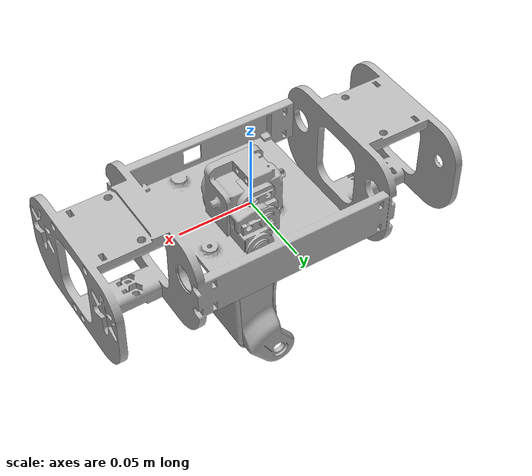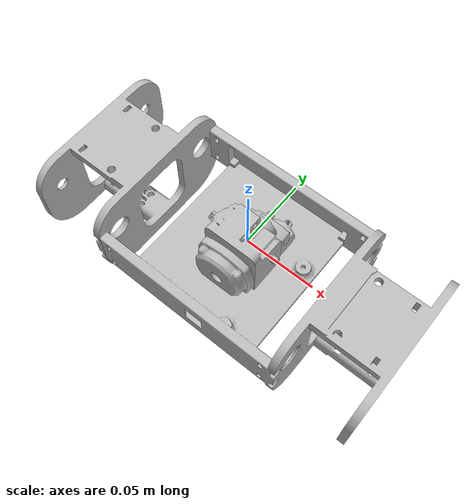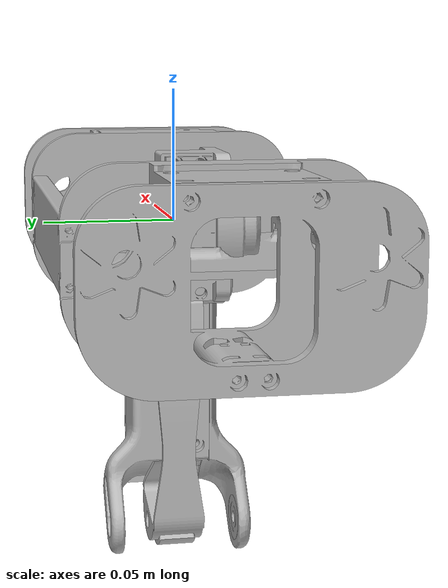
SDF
<sdf version='1.6'>
  <model name='spot_micro'>
    <link name='base_link'>
      <visual name='base_visual'>
        <geometry>
          <mesh>
            <uri>/home/sbpena01/RBE550/src/meshes/mainbody.stl</uri>
            <scale>0.001 0.001 0.001</scale>
          </mesh>
        </geometry>
        <pose>-0.045 -0.060 -0.015 0 0 0</pose>
      </visual>
      <collision name='base_collision'>
        <geometry>
          <box>
            <size>0.14 0.11 0.07</size>
          </box>
        </geometry>
        <pose>0 0 1 0 0 0</pose>
      </collision>
      <inertial>
        <mass>2.80</mass>
        <inertia>
          <ixx>100</ixx>
          <ixy>0</ixy>
          <ixz>0</ixz>
          <iyy>100</iyy>
          <iyz>0</iyz>
          <izz>100</izz>
        </inertia>
      </inertial>
    </link>

    <link name='front_left_shoulder_link'>
      <visual name='front_left_shoulder_visual'>
        <geometry>
          <mesh>
            <uri>/home/sbpena01/RBE550/src/meshes/lshoulder.stl</uri>
            <scale>0.001 0.001 0.001</scale>
          </mesh>
        </geometry>
        <pose>-0.135 -0.02 -0.01 0 0 0</pose>
      </visual>
      <collision name='front_left_shoulder_collision'>
        <geometry>
          <box>
            <size>0.044 0.038 0.07</size>
          </box>
        </geometry>
        <pose>0 0 0 0 0 0</pose>
      </collision>
      <inertial>
        <mass>0.10</mass>
        <inertia>
          <ixx>100</ixx>
          <ixy>0</ixy>
          <ixz>0</ixz>
          <iyy>100</iyy>
          <iyz>0</iyz>
          <izz>100</izz>
        </inertia>
      </inertial>
    </link>

    <link name='front_left_leg_link_cover'>
      <visual name='front_left_leg_cover_visual'>
        <geometry>
          <mesh>
            <uri>/home/sbpena01/RBE550/src/meshes/larm_cover.stl</uri>
            <scale>0.001 0.001 0.001</scale>
          </mesh>
        </geometry>
        <pose>-0.125 0.04 -0.02 0 0 0</pose>
      </visual>
    </link>

    <link name='front_left_leg_link'>
      <visual name='front_left_leg_visual'>
        <geometry>
          <mesh>
            <uri>/home/sbpena01/RBE550/src/meshes/larm.stl</uri>
            <scale>0.001 0.001 0.001</scale>
          </mesh>
        </geometry>
        <pose>-0.125 0.04 -0.02 0 0 0</pose>
      </visual>
      <collision name='front_left_leg_collision'>
        <geometry>
          <box>
            <size>0.028 0.036 0.12</size>
          </box>
        </geometry>
        <pose>0 0 -0.050 0 0 0</pose>
      </collision>
      <inertial>
        <mass>0.15</mass>
        <inertia>
          <ixx>1000</ixx>
          <ixy>0</ixy>
          <ixz>0</ixz>
          <iyy>1000</iyy>
          <iyz>0</iyz>
          <izz>1000</izz>
        </inertia>
      </inertial>
    </link>

    <link name='front_left_foot_link'>
      <visual name='front_left_foot_visual'>
        <geometry>
          <mesh>
            <uri>/home/sbpena01/RBE550/src/meshes/lfoot.stl</uri>
            <scale>0.001 0.001 0.001</scale>
          </mesh>
        </geometry>
        <pose>-0.120 0.04 0.1 0 0 0</pose>
      </visual>
      <collision name='front_left_foot_collision'>
        <geometry>
          <box>
            <size>0.026 0.020 0.115</size>
          </box>
        </geometry>
        <pose>0 0 -0.050 0 0 0</pose>
      </collision>
      <inertial>
        <mass>0.1</mass>
        <inertia>
          <ixx>1000</ixx>
          <ixy>0</ixy>
          <ixz>0</ixz>
          <iyy>1000</iyy>
          <iyz>0</iyz>
          <izz>1000</izz>
        </inertia>
      </inertial>
    </link>

    <link name='front_left_toe_link'>
      <visual name='front_left_toe_visual'>
        <geometry>
          <mesh>
            <uri>/home/sbpena01/RBE550/src/meshes/foot.stl</uri>
            <scale>0.001 0.001 0.001</scale>
          </mesh>
        </geometry>
        <pose>0 -0.01 0 0 -0.4001 0</pose>
      </visual>
      <collision name='front_left_toe_collision'>
        <geometry>
          <sphere>
            <radius>0.02</radius>
          </sphere>
        </geometry>
        <pose>0 0 0 0 0 0</pose>
      </collision>
      <inertial>
        <mass>0.05</mass>
        <inertia>
          <ixx>1000</ixx>
          <ixy>0</ixy>
          <ixz>0</ixz>
          <iyy>1000</iyy>
          <iyz>0</iyz>
          <izz>1000</izz>
        </inertia>
      </inertial>
    </link>

    <joint name='front_left_shoulder' type='revolute'>
      <parent>base_link</parent>
      <child>front_left_shoulder_link</child>
      <axis>
        <xyz>1 0 0</xyz>
        <limit>
            <effort>1000.0</effort>
            <lower>-0.548</lower>
            <upper>0.548</upper>
            <velocity>0.7</velocity>
        </limit>
        <dynamics>
            <damping>0.0</damping>
            <friction>0.5</friction>
        </dynamics>
      </axis>
      <pose relative_to='base_link'>-0.093 -0.036 0 0 0 0</pose>
    </joint>

    <joint name='front_left_leg' type='revolute'>
      <parent>front_left_shoulder_link</parent>
      <child>front_left_leg_link</child>
      <axis>
        <xyz>0 1 0</xyz>
        <limit>
            <effort>1000.0</effort>
            <lower>-2.666</lower>
            <upper>1.548</upper>
            <velocity>0.5</velocity>
        </limit>
        <dynamics>
            <damping>0.0</damping>
            <friction>0.0</friction>
        </dynamics>
      </axis>
      <pose relative_to='front_left_shoulder_link'>0 -0.052 0 0 0 0</pose>

    </joint>

    <joint name='front_left_leg_cover_joint' type='fixed'>
      <parent>front_left_leg_link</parent>
      <child>front_left_leg_link_cover</child>
      <pose relative_to='front_left_leg_link'>0 0 0 0 0 0</pose>
    </joint>

    <joint name='front_left_foot' type='revolute'>
      <parent>front_left_leg_link</parent>
      <child>front_left_foot_link</child>
      <axis>
        <xyz>0 1 0</xyz>
        <limit>
            <effort>1000.0</effort>
            <lower>-0.1</lower>
            <upper>2.59</upper>
            <velocity>0.5</velocity>
        </limit>
        <dynamics>
            <damping>0.0</damping>
            <friction>0.5</friction>
        </dynamics>
      </axis>
      <pose relative_to='front_left_leg_link'>-0.01 0 -0.12 0 0 0</pose>
    </joint>

    <joint name='front_left_toe' type='fixed'>
      <parent>front_left_foot_link</parent>
      <child>front_left_toe_link</child>
      <pose relative_to='front_left_foot_link'>0 0 -0.115 0 0 0</pose>
    </joint>
  </model>
</sdf>
